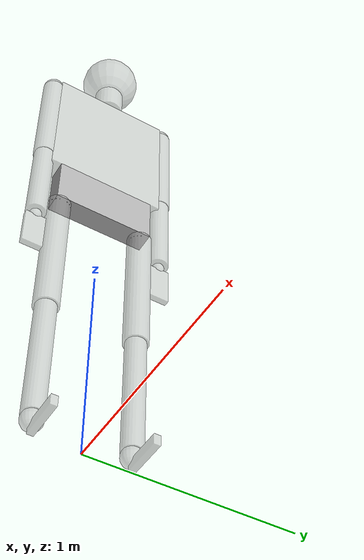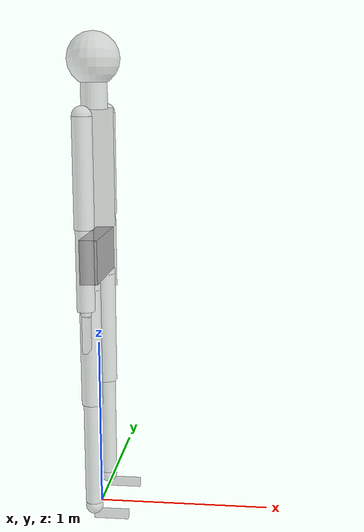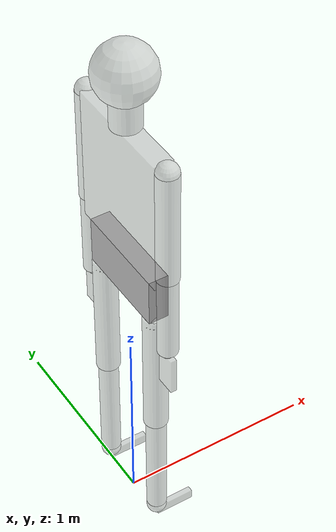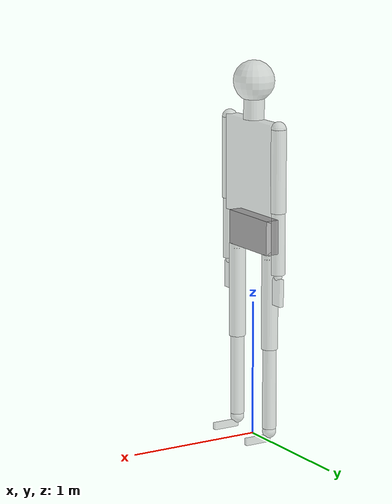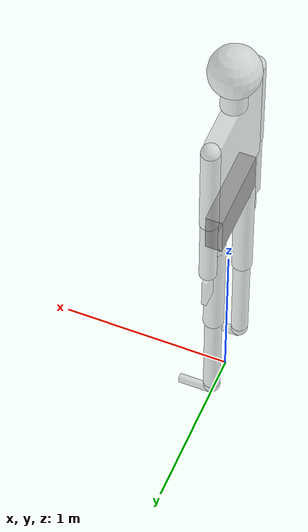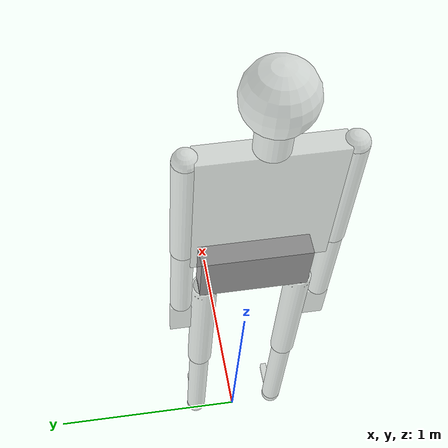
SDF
<?xml version="1.0" ?>
<sdf version="1.6">
  <model name="ghost">
    <static>true</static>
    <pose>0 0 1.4 0 0 0</pose>
    <link name="hip">
      <visual name="hip_geom_visual">
        <pose>0 0 0.125000 0 0 0</pose>
        <geometry>
          <box>
            <size>0.100000 0.500000 0.250000</size>
          </box>
        </geometry>
      </visual>
    </link>
    <link name="l_thigh_pan">
      <pose>0 0.220000 0 0 0 0</pose>
      <visual name="l_thigh_pan_geom_visual">
        <pose>0 0 -0.030000 0 0 0</pose>
        <geometry>
          <sphere>
            <radius>0.060000</radius>
          </sphere>
        </geometry>
        <transparency>0.5</transparency>
      </visual>
    </link>
    <link name="l_thigh_lift">
      <pose>0 0.220000 0 0 0 0</pose>
      <visual name="l_thigh_lift_geom_visual">
        <pose>0 0 -0.350000 0 0 0</pose>
        <geometry>
          <cylinder>
            <radius>0.060000</radius>
            <length>0.700000</length>
          </cylinder>
        </geometry>
        <transparency>0.5</transparency>
      </visual>
    </link>
    <link name="l_calf">
      <pose>0 0.220000 -0.700000 0 0 0</pose>
      <visual name="l_calf_geom_visual">
        <pose>0 0 -0.300000 0 0 0</pose>
        <geometry>
          <cylinder>
            <radius>0.050000</radius>
            <length>0.600000</length>
          </cylinder>
        </geometry>
        <transparency>0.5</transparency>
      </visual>
    </link>
    <link name="l_ankle">
      <pose>0 0.220000 -1.325000 0 0 0</pose>
      <visual name="l_ankle_geom_visual">
        <geometry>
          <sphere>
            <radius>0.050000</radius>
          </sphere>
        </geometry>
        <transparency>0.5</transparency>
      </visual>
    </link>
    <link name="l_foot">
      <pose>0 0.220000 -1.350000 0 0 0</pose>
      <visual name="l_foot_geom_visual">
        <pose>0.100000 0 -0.025000 0 0 0</pose>
        <geometry>
          <box>
            <size>0.200000 0.030000 0.050000</size>
          </box>
        </geometry>
        <transparency>0.5</transparency>
      </visual>
    </link>
    <link name="r_thigh_pan">
      <pose>0 -0.220000 0 0 0 0</pose>
      <visual name="r_thigh_pan_geom_visual">
        <pose>0 0 -0.030000 0 0 0</pose>
        <geometry>
          <sphere>
            <radius>0.060000</radius>
          </sphere>
        </geometry>
        <transparency>0.5</transparency>
      </visual>
    </link>
    <link name="r_thigh_lift">
      <pose>0 -0.220000 0 0 0 0</pose>
      <visual name="r_thigh_lift_geom_visual">
        <pose>0 0 -0.350000 0 0 0</pose>
        <geometry>
          <cylinder>
            <radius>0.060000</radius>
            <length>0.700000</length>
          </cylinder>
        </geometry>
        <transparency>0.5</transparency>
      </visual>
    </link>
    <link name="r_calf">
      <pose>0 -0.220000 -0.700000 0 0 0</pose>
      <visual name="r_calf_geom_visual">
        <pose>0 0 -0.300000 0 0 0</pose>
        <geometry>
          <cylinder>
            <radius>0.050000</radius>
            <length>0.600000</length>
          </cylinder>
        </geometry>
        <transparency>0.5</transparency>
      </visual>
    </link>
    <link name="r_ankle">
      <pose>0 -0.220000 -1.325000 0 0 0</pose>
      <visual name="r_ankle_geom_visual">
        <geometry>
          <sphere>
            <radius>0.050000</radius>
          </sphere>
        </geometry>
        <transparency>0.5</transparency>
      </visual>
    </link>
    <link name="r_foot">
      <pose>0 -0.220000 -1.350000 0 0 0</pose>
      <visual name="r_foot_geom_visual">
        <pose>0.100000 0 -0.025000 0 0 0</pose>
        <geometry>
          <box>
            <size>0.200000 0.030000 0.050000</size>
          </box>
        </geometry>
        <transparency>0.5</transparency>
      </visual>
    </link>
    <link name="torso">
      <pose>0 0 0.250000 0 0 0</pose>
      <visual name="torso_geom_visual">
        <pose>0 0 0.350000 0 0 0</pose>
        <geometry>
          <box>
            <size>0.100000 0.600000 0.700000</size>
          </box>
        </geometry>
        <transparency>0.5</transparency>
      </visual>
    </link>
    <link name="l_shoulder">
      <pose>0 0.327500 0.922500 0 0 0</pose>
      <visual name="l_shoulder_geom_visual">
        <geometry>
          <sphere>
            <radius>0.055000</radius>
          </sphere>
        </geometry>
        <transparency>0.5</transparency>
      </visual>
    </link>
    <link name="l_upper_arm">
      <pose>0 0.327500 0.922500 0 0 0</pose>
      <visual name="l_upper_arm_geom_visual">
        <pose>0 0 -0.300000 0 0 0</pose>
        <geometry>
          <cylinder>
            <radius>0.055000</radius>
            <length>0.600000</length>
          </cylinder>
        </geometry>
        <transparency>0.5</transparency>
      </visual>
    </link>
    <link name="l_forearm">
      <pose>0 0.327500 0.322500 0 0 0</pose>
      <visual name="l_forearm_geom_visual">
        <pose>0 0 -0.225000 0 0 0</pose>
        <geometry>
          <cylinder>
            <radius>0.050000</radius>
            <length>0.450000</length>
          </cylinder>
        </geometry>
        <transparency>0.5</transparency>
      </visual>
    </link>
    <link name="l_wrist">
      <pose>0 0.327500 -0.142500 0 0 0</pose>
      <visual name="l_wrist_geom_visual">
        <geometry>
          <sphere>
            <radius>0.030000</radius>
          </sphere>
        </geometry>
        <transparency>0.5</transparency>
      </visual>
    </link>
    <link name="l_hand">
      <pose>0 0.327500 -0.157500 0 0 0</pose>
      <visual name="l_hand_geom_visual">
        <pose>0 0 -0.100000 0 0 0</pose>
        <geometry>
          <box>
            <size>0.030000 0.100000 0.200000</size>
          </box>
        </geometry>
        <transparency>0.5</transparency>
      </visual>
    </link>
    <link name="neck">
      <pose>0 0 0.950000 0 0 0</pose>
      <visual name="neck_geom_visual">
        <pose>0 0 0.100000 0 0 0</pose>
        <geometry>
          <cylinder>
            <radius>0.075000</radius>
            <length>0.200000</length>
          </cylinder>
        </geometry>
        <transparency>0.5</transparency>
      </visual>
    </link>
    <link name="head">
      <pose>0 0 1.225000 0 0 0</pose>
      <visual name="head_geom_visual">
        <geometry>
          <sphere>
            <radius>0.150000</radius>
          </sphere>
        </geometry>
        <transparency>0.5</transparency>
        <plugin name='number' filename='libNumberVisualPlugin.so'></plugin>
      </visual>
    </link>
    <link name="r_shoulder">
      <pose>0 -0.327500 0.922500 0 0 0</pose>
      <visual name="r_shoulder_geom_visual">
        <geometry>
          <sphere>
            <radius>0.055000</radius>
          </sphere>
        </geometry>
        <transparency>0.5</transparency>
      </visual>
    </link>
    <link name="r_upper_arm">
      <pose>0 -0.327500 0.922500 0 0 0</pose>
      <visual name="r_upper_arm_geom_visual">
        <pose>0 0 -0.300000 0 0 0</pose>
        <geometry>
          <cylinder>
            <radius>0.055000</radius>
            <length>0.600000</length>
          </cylinder>
        </geometry>
        <transparency>0.5</transparency>
      </visual>
    </link>
    <link name="r_forearm">
      <pose>0 -0.327500 0.322500 0 0 0</pose>
      <visual name="r_forearm_geom_visual">
        <pose>0 0 -0.225000 0 0 0</pose>
        <geometry>
          <cylinder>
            <radius>0.050000</radius>
            <length>0.450000</length>
          </cylinder>
        </geometry>
        <transparency>0.5</transparency>
      </visual>
    </link>
    <link name="r_wrist">
      <pose>0 -0.327500 -0.142500 0 0 0</pose>
      <visual name="r_wrist_geom_visual">
        <geometry>
          <sphere>
            <radius>0.030000</radius>
          </sphere>
        </geometry>
        <transparency>0.5</transparency>
      </visual>
    </link>
    <link name="r_hand">
      <pose>0 -0.327500 -0.157500 0 0 0</pose>
      <visual name="r_hand_geom_visual">
        <pose>0 0 -0.100000 0 0 0</pose>
        <geometry>
          <box>
            <size>0.030000 0.100000 0.200000</size>
          </box>
        </geometry>
        <transparency>0.5</transparency>
      </visual>
    </link>
  </model>
</sdf>
